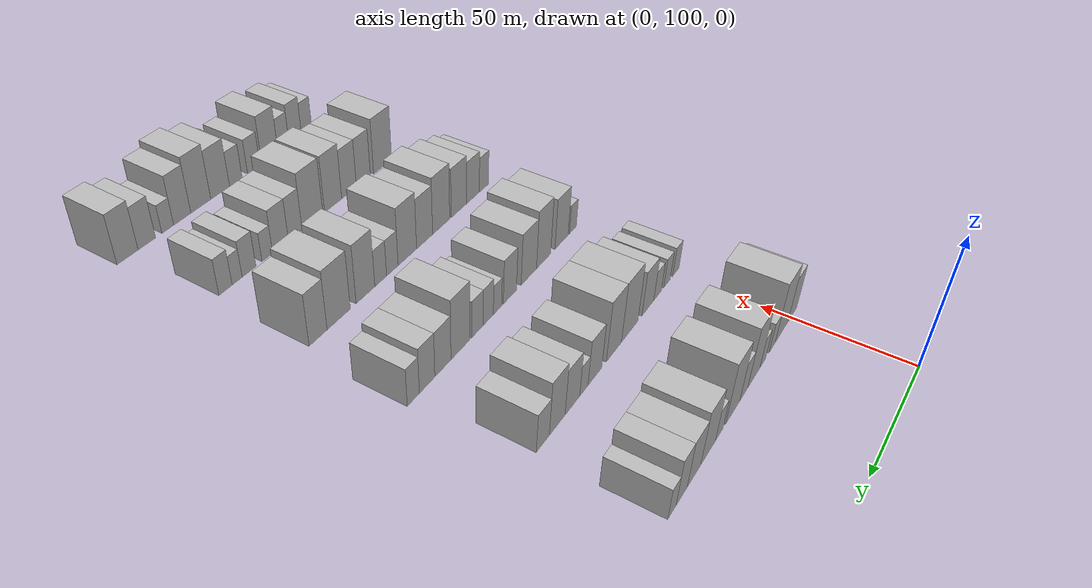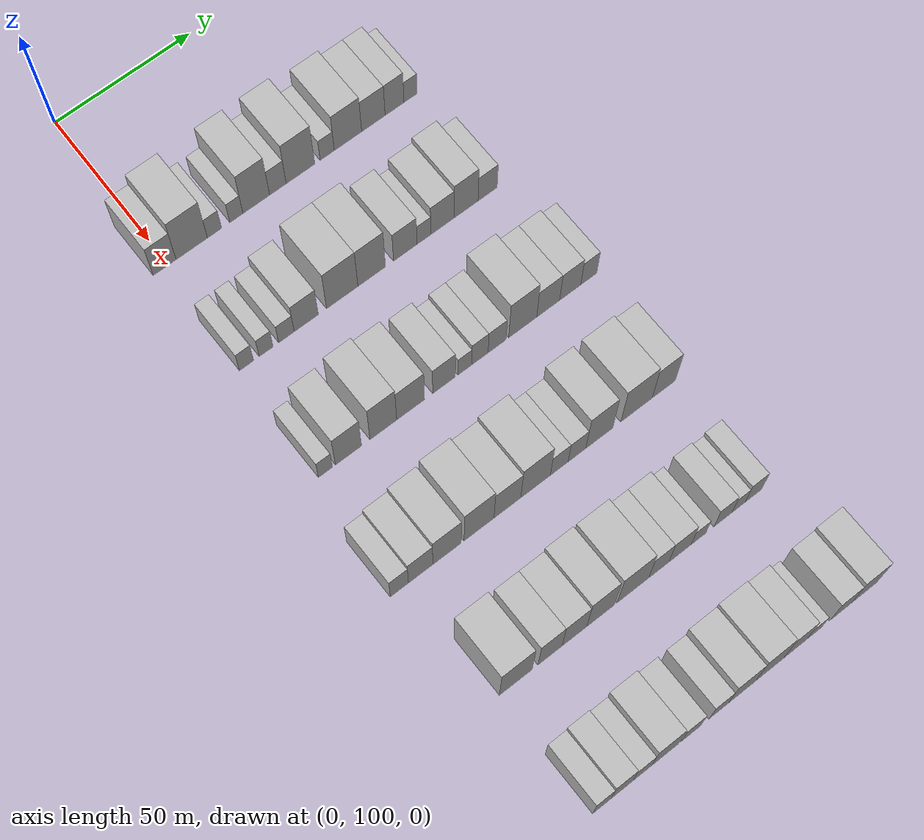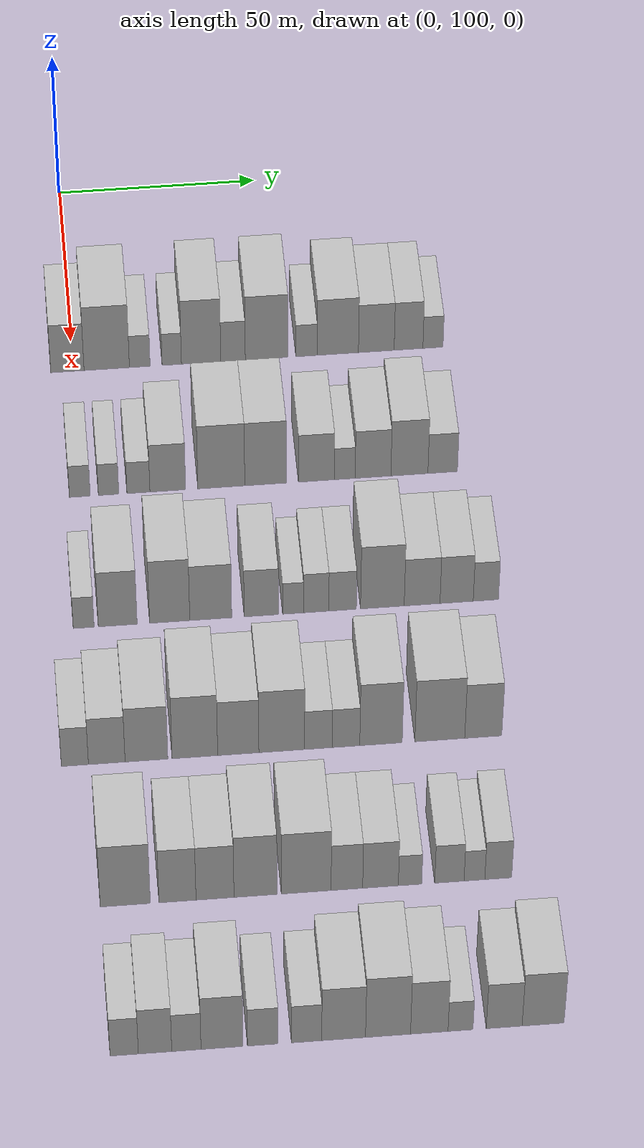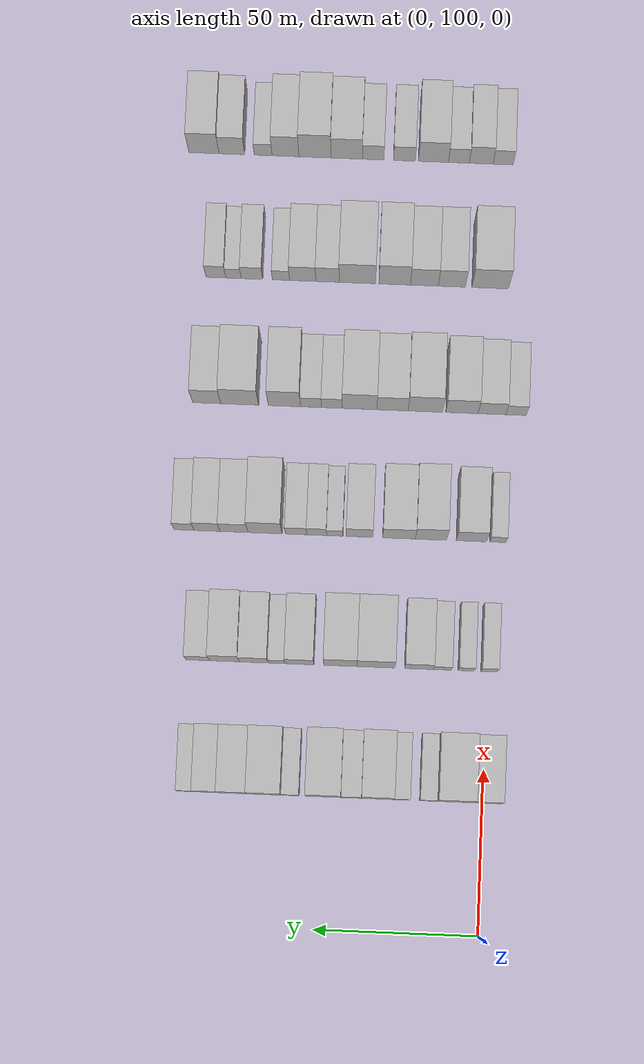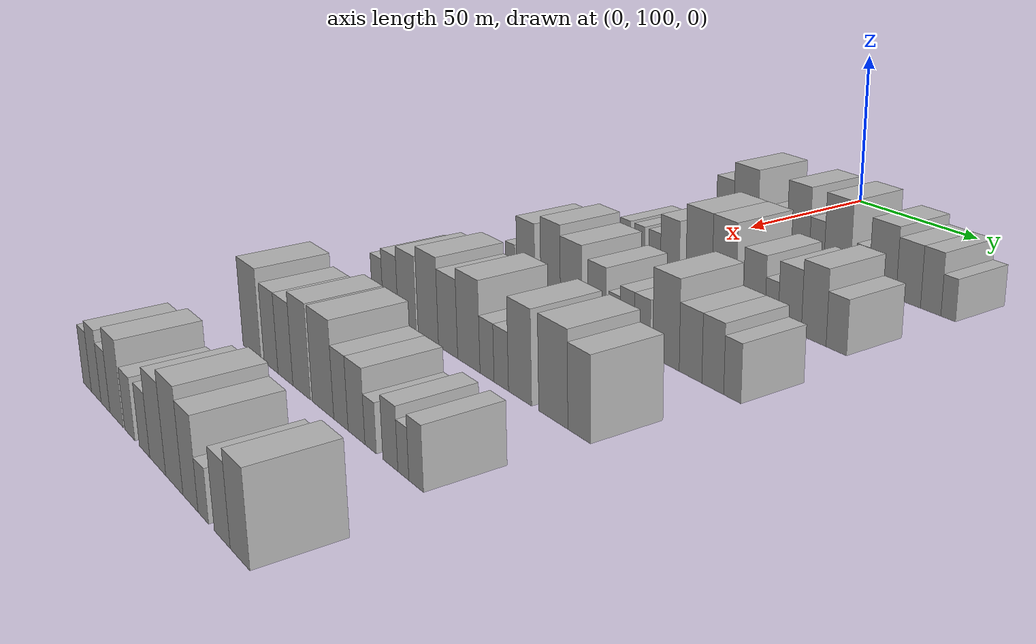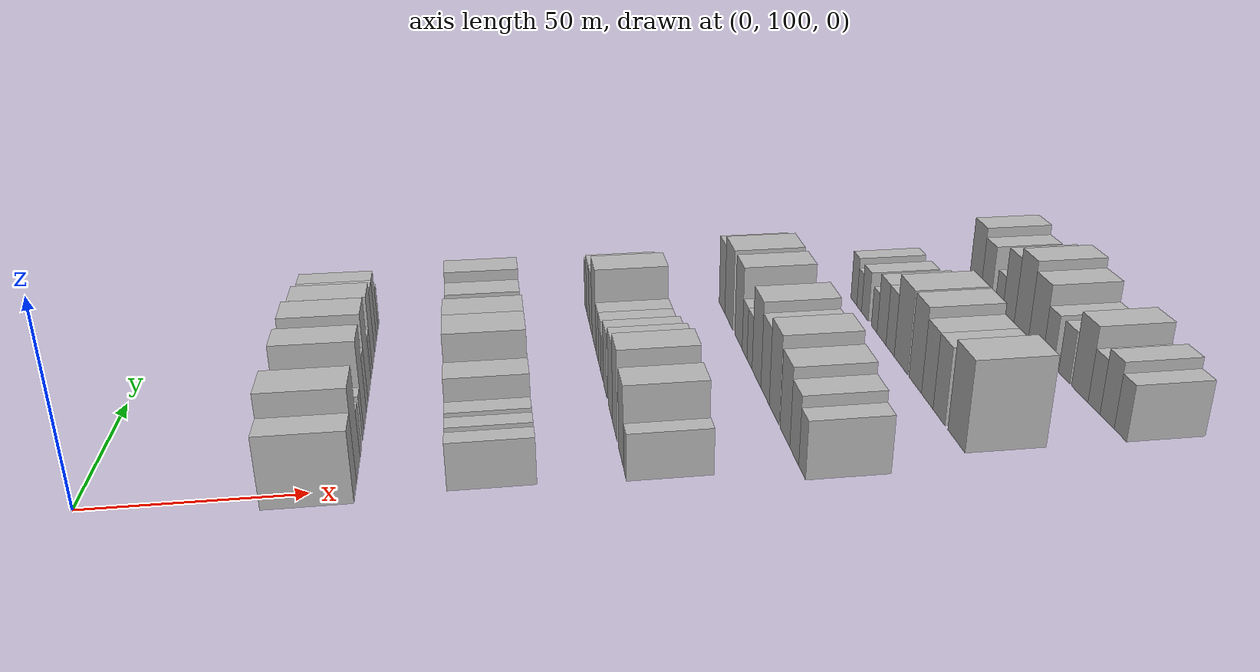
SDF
<sdf version="1.6">
 <world name="default">
  <model name="building_76">
   <static>1</static>
   <pose>50.0000 98.5672 0 0.000000 0.000000 0.000000</pose>
   <link name="link">
    <pose>0 0 9.00 0 0 0</pose>
    <collision name="collision"><geometry><box><size>20.0000 8.3102 18.0000</size></box></geometry></collision>
    <visual name="visual">
     <cast_shadows>0</cast_shadows>
     <geometry><box><size>20.0000 8.3102 18.0000</size></box></geometry>
     <material>
      <script>
       <uri>model://HANNAS_wall/materials/scripts</uri>
       <uri>model://HANNAS_wall/materials/textures</uri>
       <name>vrc/HANNAS_wall</name>
      </script>
     </material>
    </visual>
   </link>
  </model>
  <model name="building_77">
   <static>1</static>
   <pose>50.0000 108.3901 0 0.000000 0.000000 0.000000</pose>
   <link name="link">
    <pose>0 0 12.00 0 0 0</pose>
    <collision name="collision"><geometry><box><size>20.0000 11.3357 24.0000</size></box></geometry></collision>
    <visual name="visual">
     <cast_shadows>0</cast_shadows>
     <geometry><box><size>20.0000 11.3357 24.0000</size></box></geometry>
     <material>
      <script>
       <uri>model://HANNAS_wall/materials/scripts</uri>
       <uri>model://HANNAS_wall/materials/textures</uri>
       <name>vrc/HANNAS_wall</name>
      </script>
     </material>
    </visual>
   </link>
  </model>
  <model name="building_78">
   <static>1</static>
   <pose>50.0000 116.6455 0 0.000000 0.000000 0.000000</pose>
   <link name="link">
    <pose>0 0 6.00 0 0 0</pose>
    <collision name="collision"><geometry><box><size>20.0000 5.1752 12.0000</size></box></geometry></collision>
    <visual name="visual">
     <cast_shadows>0</cast_shadows>
     <geometry><box><size>20.0000 5.1752 12.0000</size></box></geometry>
     <material>
      <script>
       <uri>model://HANNAS_wall/materials/scripts</uri>
       <uri>model://HANNAS_wall/materials/textures</uri>
       <name>vrc/HANNAS_wall</name>
      </script>
     </material>
    </visual>
   </link>
  </model>
  <model name="building_79">
   <static>1</static>
   <pose>50.0000 124.6533 0 0.000000 0.000000 0.000000</pose>
   <link name="link">
    <pose>0 0 6.00 0 0 0</pose>
    <collision name="collision"><geometry><box><size>20.0000 4.8404 12.0000</size></box></geometry></collision>
    <visual name="visual">
     <cast_shadows>0</cast_shadows>
     <geometry><box><size>20.0000 4.8404 12.0000</size></box></geometry>
     <material>
      <script>
       <uri>model://HANNAS_wall/materials/scripts</uri>
       <uri>model://HANNAS_wall/materials/textures</uri>
       <name>vrc/HANNAS_wall</name>
      </script>
     </material>
    </visual>
   </link>
  </model>
  <model name="building_80">
   <static>1</static>
   <pose>50.0000 131.9939 0 0.000000 0.000000 0.000000</pose>
   <link name="link">
    <pose>0 0 12.00 0 0 0</pose>
    <collision name="collision"><geometry><box><size>20.0000 9.8407 24.0000</size></box></geometry></collision>
    <visual name="visual">
     <cast_shadows>0</cast_shadows>
     <geometry><box><size>20.0000 9.8407 24.0000</size></box></geometry>
     <material>
      <script>
       <uri>model://HANNAS_wall/materials/scripts</uri>
       <uri>model://HANNAS_wall/materials/textures</uri>
       <name>vrc/HANNAS_wall</name>
      </script>
     </material>
    </visual>
   </link>
  </model>
  <model name="building_81">
   <static>1</static>
   <pose>50.0000 139.9868 0 0.000000 0.000000 0.000000</pose>
   <link name="link">
    <pose>0 0 7.50 0 0 0</pose>
    <collision name="collision"><geometry><box><size>20.0000 6.1452 15.0000</size></box></geometry></collision>
    <visual name="visual">
     <cast_shadows>0</cast_shadows>
     <geometry><box><size>20.0000 6.1452 15.0000</size></box></geometry>
     <material>
      <script>
       <uri>model://HANNAS_wall/materials/scripts</uri>
       <uri>model://HANNAS_wall/materials/textures</uri>
       <name>vrc/HANNAS_wall</name>
      </script>
     </material>
    </visual>
   </link>
  </model>
  <model name="building_82">
   <static>1</static>
   <pose>50.0000 148.3992 0 0.000000 0.000000 0.000000</pose>
   <link name="link">
    <pose>0 0 12.00 0 0 0</pose>
    <collision name="collision"><geometry><box><size>20.0000 10.6796 24.0000</size></box></geometry></collision>
    <visual name="visual">
     <cast_shadows>0</cast_shadows>
     <geometry><box><size>20.0000 10.6796 24.0000</size></box></geometry>
     <material>
      <script>
       <uri>model://HANNAS_wall/materials/scripts</uri>
       <uri>model://HANNAS_wall/materials/textures</uri>
       <name>vrc/HANNAS_wall</name>
      </script>
     </material>
    </visual>
   </link>
  </model>
  <model name="building_83">
   <static>1</static>
   <pose>50.0000 158.4150 0 0.000000 0.000000 0.000000</pose>
   <link name="link">
    <pose>0 0 6.00 0 0 0</pose>
    <collision name="collision"><geometry><box><size>20.0000 5.3520 12.0000</size></box></geometry></collision>
    <visual name="visual">
     <cast_shadows>0</cast_shadows>
     <geometry><box><size>20.0000 5.3520 12.0000</size></box></geometry>
     <material>
      <script>
       <uri>model://HANNAS_wall/materials/scripts</uri>
       <uri>model://HANNAS_wall/materials/textures</uri>
       <name>vrc/HANNAS_wall</name>
      </script>
     </material>
    </visual>
   </link>
  </model>
  <model name="building_84">
   <static>1</static>
   <pose>50.0000 166.2675 0 0.000000 0.000000 0.000000</pose>
   <link name="link">
    <pose>0 0 10.50 0 0 0</pose>
    <collision name="collision"><geometry><box><size>20.0000 10.3529 21.0000</size></box></geometry></collision>
    <visual name="visual">
     <cast_shadows>0</cast_shadows>
     <geometry><box><size>20.0000 10.3529 21.0000</size></box></geometry>
     <material>
      <script>
       <uri>model://HANNAS_wall/materials/scripts</uri>
       <uri>model://HANNAS_wall/materials/textures</uri>
       <name>vrc/HANNAS_wall</name>
      </script>
     </material>
    </visual>
   </link>
  </model>
  <model name="building_85">
   <static>1</static>
   <pose>50.0000 175.9292 0 0.000000 0.000000 0.000000</pose>
   <link name="link">
    <pose>0 0 9.00 0 0 0</pose>
    <collision name="collision"><geometry><box><size>20.0000 8.9707 18.0000</size></box></geometry></collision>
    <visual name="visual">
     <cast_shadows>0</cast_shadows>
     <geometry><box><size>20.0000 8.9707 18.0000</size></box></geometry>
     <material>
      <script>
       <uri>model://HANNAS_wall/materials/scripts</uri>
       <uri>model://HANNAS_wall/materials/textures</uri>
       <name>vrc/HANNAS_wall</name>
      </script>
     </material>
    </visual>
   </link>
  </model>
  <model name="building_86">
   <static>1</static>
   <pose>50.0000 184.0339 0 0.000000 0.000000 0.000000</pose>
   <link name="link">
    <pose>0 0 9.00 0 0 0</pose>
    <collision name="collision"><geometry><box><size>20.0000 7.2386 18.0000</size></box></geometry></collision>
    <visual name="visual">
     <cast_shadows>0</cast_shadows>
     <geometry><box><size>20.0000 7.2386 18.0000</size></box></geometry>
     <material>
      <script>
       <uri>model://HANNAS_wall/materials/scripts</uri>
       <uri>model://HANNAS_wall/materials/textures</uri>
       <name>vrc/HANNAS_wall</name>
      </script>
     </material>
    </visual>
   </link>
  </model>
  <model name="building_87">
   <static>1</static>
   <pose>50.0000 190.1788 0 0.000000 0.000000 0.000000</pose>
   <link name="link">
    <pose>0 0 6.00 0 0 0</pose>
    <collision name="collision"><geometry><box><size>20.0000 5.0511 12.0000</size></box></geometry></collision>
    <visual name="visual">
     <cast_shadows>0</cast_shadows>
     <geometry><box><size>20.0000 5.0511 12.0000</size></box></geometry>
     <material>
      <script>
       <uri>model://HANNAS_wall/materials/scripts</uri>
       <uri>model://HANNAS_wall/materials/textures</uri>
       <name>vrc/HANNAS_wall</name>
      </script>
     </material>
    </visual>
   </link>
  </model>
  <model name="building_224">
   <static>1</static>
   <pose>90.0000 99.3424 0 0.000000 0.000000 0.000000</pose>
   <link name="link">
    <pose>0 0 6.00 0 0 0</pose>
    <collision name="collision"><geometry><box><size>20.0000 5.0800 12.0000</size></box></geometry></collision>
    <visual name="visual">
     <cast_shadows>0</cast_shadows>
     <geometry><box><size>20.0000 5.0800 12.0000</size></box></geometry>
     <material>
      <script>
       <uri>model://HANNAS_wall/materials/scripts</uri>
       <uri>model://HANNAS_wall/materials/textures</uri>
       <name>vrc/HANNAS_wall</name>
      </script>
     </material>
    </visual>
   </link>
  </model>
  <model name="building_225">
   <static>1</static>
   <pose>90.0000 106.3802 0 0.000000 0.000000 0.000000</pose>
   <link name="link">
    <pose>0 0 6.00 0 0 0</pose>
    <collision name="collision"><geometry><box><size>20.0000 4.9957 12.0000</size></box></geometry></collision>
    <visual name="visual">
     <cast_shadows>0</cast_shadows>
     <geometry><box><size>20.0000 4.9957 12.0000</size></box></geometry>
     <material>
      <script>
       <uri>model://HANNAS_wall/materials/scripts</uri>
       <uri>model://HANNAS_wall/materials/textures</uri>
       <name>vrc/HANNAS_wall</name>
      </script>
     </material>
    </visual>
   </link>
  </model>
  <model name="building_226">
   <static>1</static>
   <pose>90.0000 113.6863 0 0.000000 0.000000 0.000000</pose>
   <link name="link">
    <pose>0 0 6.00 0 0 0</pose>
    <collision name="collision"><geometry><box><size>20.0000 5.6165 12.0000</size></box></geometry></collision>
    <visual name="visual">
     <cast_shadows>0</cast_shadows>
     <geometry><box><size>20.0000 5.6165 12.0000</size></box></geometry>
     <material>
      <script>
       <uri>model://HANNAS_wall/materials/scripts</uri>
       <uri>model://HANNAS_wall/materials/textures</uri>
       <name>vrc/HANNAS_wall</name>
      </script>
     </material>
    </visual>
   </link>
  </model>
  <model name="building_227">
   <static>1</static>
   <pose>90.0000 120.8696 0 0.000000 0.000000 0.000000</pose>
   <link name="link">
    <pose>0 0 9.00 0 0 0</pose>
    <collision name="collision"><geometry><box><size>20.0000 8.7502 18.0000</size></box></geometry></collision>
    <visual name="visual">
     <cast_shadows>0</cast_shadows>
     <geometry><box><size>20.0000 8.7502 18.0000</size></box></geometry>
     <material>
      <script>
       <uri>model://HANNAS_wall/materials/scripts</uri>
       <uri>model://HANNAS_wall/materials/textures</uri>
       <name>vrc/HANNAS_wall</name>
      </script>
     </material>
    </visual>
   </link>
  </model>
  <model name="building_228">
   <static>1</static>
   <pose>90.0000 133.9975 0 0.000000 0.000000 0.000000</pose>
   <link name="link">
    <pose>0 0 12.00 0 0 0</pose>
    <collision name="collision"><geometry><box><size>20.0000 11.5055 24.0000</size></box></geometry></collision>
    <visual name="visual">
     <cast_shadows>0</cast_shadows>
     <geometry><box><size>20.0000 11.5055 24.0000</size></box></geometry>
     <material>
      <script>
       <uri>model://HANNAS_wall/materials/scripts</uri>
       <uri>model://HANNAS_wall/materials/textures</uri>
       <name>vrc/HANNAS_wall</name>
      </script>
     </material>
    </visual>
   </link>
  </model>
  <model name="building_229">
   <static>1</static>
   <pose>90.0000 144.8371 0 0.000000 0.000000 0.000000</pose>
   <link name="link">
    <pose>0 0 12.00 0 0 0</pose>
    <collision name="collision"><geometry><box><size>20.0000 10.1737 24.0000</size></box></geometry></collision>
    <visual name="visual">
     <cast_shadows>0</cast_shadows>
     <geometry><box><size>20.0000 10.1737 24.0000</size></box></geometry>
     <material>
      <script>
       <uri>model://HANNAS_wall/materials/scripts</uri>
       <uri>model://HANNAS_wall/materials/textures</uri>
       <name>vrc/HANNAS_wall</name>
      </script>
     </material>
    </visual>
   </link>
  </model>
  <model name="building_230">
   <static>1</static>
   <pose>90.0000 157.3308 0 0.000000 0.000000 0.000000</pose>
   <link name="link">
    <pose>0 0 9.00 0 0 0</pose>
    <collision name="collision"><geometry><box><size>20.0000 8.8136 18.0000</size></box></geometry></collision>
    <visual name="visual">
     <cast_shadows>0</cast_shadows>
     <geometry><box><size>20.0000 8.8136 18.0000</size></box></geometry>
     <material>
      <script>
       <uri>model://HANNAS_wall/materials/scripts</uri>
       <uri>model://HANNAS_wall/materials/textures</uri>
       <name>vrc/HANNAS_wall</name>
      </script>
     </material>
    </visual>
   </link>
  </model>
  <model name="building_231">
   <static>1</static>
   <pose>90.0000 164.3049 0 0.000000 0.000000 0.000000</pose>
   <link name="link">
    <pose>0 0 6.00 0 0 0</pose>
    <collision name="collision"><geometry><box><size>20.0000 5.1347 12.0000</size></box></geometry></collision>
    <visual name="visual">
     <cast_shadows>0</cast_shadows>
     <geometry><box><size>20.0000 5.1347 12.0000</size></box></geometry>
     <material>
      <script>
       <uri>model://HANNAS_wall/materials/scripts</uri>
       <uri>model://HANNAS_wall/materials/textures</uri>
       <name>vrc/HANNAS_wall</name>
      </script>
     </material>
    </visual>
   </link>
  </model>
  <model name="building_232">
   <static>1</static>
   <pose>90.0000 171.2639 0 0.000000 0.000000 0.000000</pose>
   <link name="link">
    <pose>0 0 9.00 0 0 0</pose>
    <collision name="collision"><geometry><box><size>20.0000 8.7832 18.0000</size></box></geometry></collision>
    <visual name="visual">
     <cast_shadows>0</cast_shadows>
     <geometry><box><size>20.0000 8.7832 18.0000</size></box></geometry>
     <material>
      <script>
       <uri>model://HANNAS_wall/materials/scripts</uri>
       <uri>model://HANNAS_wall/materials/textures</uri>
       <name>vrc/HANNAS_wall</name>
      </script>
     </material>
    </visual>
   </link>
  </model>
  <model name="building_233">
   <static>1</static>
   <pose>90.0000 180.2195 0 0.000000 0.000000 0.000000</pose>
   <link name="link">
    <pose>0 0 10.50 0 0 0</pose>
    <collision name="collision"><geometry><box><size>20.0000 9.1281 21.0000</size></box></geometry></collision>
    <visual name="visual">
     <cast_shadows>0</cast_shadows>
     <geometry><box><size>20.0000 9.1281 21.0000</size></box></geometry>
     <material>
      <script>
       <uri>model://HANNAS_wall/materials/scripts</uri>
       <uri>model://HANNAS_wall/materials/textures</uri>
       <name>vrc/HANNAS_wall</name>
      </script>
     </material>
    </visual>
   </link>
  </model>
  <model name="building_234">
   <static>1</static>
   <pose>90.0000 188.4133 0 0.000000 0.000000 0.000000</pose>
   <link name="link">
    <pose>0 0 7.50 0 0 0</pose>
    <collision name="collision"><geometry><box><size>20.0000 7.2596 15.0000</size></box></geometry></collision>
    <visual name="visual">
     <cast_shadows>0</cast_shadows>
     <geometry><box><size>20.0000 7.2596 15.0000</size></box></geometry>
     <material>
      <script>
       <uri>model://HANNAS_wall/materials/scripts</uri>
       <uri>model://HANNAS_wall/materials/textures</uri>
       <name>vrc/HANNAS_wall</name>
      </script>
     </material>
    </visual>
   </link>
  </model>
  <model name="building_361">
   <static>1</static>
   <pose>130.0000 97.9406 0 0.000000 0.000000 0.000000</pose>
   <link name="link">
    <pose>0 0 6.00 0 0 0</pose>
    <collision name="collision"><geometry><box><size>20.0000 5.0009 12.0000</size></box></geometry></collision>
    <visual name="visual">
     <cast_shadows>0</cast_shadows>
     <geometry><box><size>20.0000 5.0009 12.0000</size></box></geometry>
     <material>
      <script>
       <uri>model://HANNAS_wall/materials/scripts</uri>
       <uri>model://HANNAS_wall/materials/textures</uri>
       <name>vrc/HANNAS_wall</name>
      </script>
     </material>
    </visual>
   </link>
  </model>
  <model name="building_362">
   <static>1</static>
   <pose>130.0000 106.0952 0 0.000000 0.000000 0.000000</pose>
   <link name="link">
    <pose>0 0 10.50 0 0 0</pose>
    <collision name="collision"><geometry><box><size>20.0000 9.3083 21.0000</size></box></geometry></collision>
    <visual name="visual">
     <cast_shadows>0</cast_shadows>
     <geometry><box><size>20.0000 9.3083 21.0000</size></box></geometry>
     <material>
      <script>
       <uri>model://HANNAS_wall/materials/scripts</uri>
       <uri>model://HANNAS_wall/materials/textures</uri>
       <name>vrc/HANNAS_wall</name>
      </script>
     </material>
    </visual>
   </link>
  </model>
  <model name="building_363">
   <static>1</static>
   <pose>130.0000 118.5629 0 0.000000 0.000000 0.000000</pose>
   <link name="link">
    <pose>0 0 12.00 0 0 0</pose>
    <collision name="collision"><geometry><box><size>20.0000 9.6271 24.0000</size></box></geometry></collision>
    <visual name="visual">
     <cast_shadows>0</cast_shadows>
     <geometry><box><size>20.0000 9.6271 24.0000</size></box></geometry>
     <material>
      <script>
       <uri>model://HANNAS_wall/materials/scripts</uri>
       <uri>model://HANNAS_wall/materials/textures</uri>
       <name>vrc/HANNAS_wall</name>
      </script>
     </material>
    </visual>
   </link>
  </model>
  <model name="building_364">
   <static>1</static>
   <pose>130.0000 128.4090 0 0.000000 0.000000 0.000000</pose>
   <link name="link">
    <pose>0 0 10.50 0 0 0</pose>
    <collision name="collision"><geometry><box><size>20.0000 10.0651 21.0000</size></box></geometry></collision>
    <visual name="visual">
     <cast_shadows>0</cast_shadows>
     <geometry><box><size>20.0000 10.0651 21.0000</size></box></geometry>
     <material>
      <script>
       <uri>model://HANNAS_wall/materials/scripts</uri>
       <uri>model://HANNAS_wall/materials/textures</uri>
       <name>vrc/HANNAS_wall</name>
      </script>
     </material>
    </visual>
   </link>
  </model>
  <model name="building_365">
   <static>1</static>
   <pose>130.0000 140.5589 0 0.000000 0.000000 0.000000</pose>
   <link name="link">
    <pose>0 0 9.00 0 0 0</pose>
    <collision name="collision"><geometry><box><size>20.0000 8.2346 18.0000</size></box></geometry></collision>
    <visual name="visual">
     <cast_shadows>0</cast_shadows>
     <geometry><box><size>20.0000 8.2346 18.0000</size></box></geometry>
     <material>
      <script>
       <uri>model://HANNAS_wall/materials/scripts</uri>
       <uri>model://HANNAS_wall/materials/textures</uri>
       <name>vrc/HANNAS_wall</name>
      </script>
     </material>
    </visual>
   </link>
  </model>
  <model name="building_366">
   <static>1</static>
   <pose>130.0000 148.1855 0 0.000000 0.000000 0.000000</pose>
   <link name="link">
    <pose>0 0 6.00 0 0 0</pose>
    <collision name="collision"><geometry><box><size>20.0000 5.0186 12.0000</size></box></geometry></collision>
    <visual name="visual">
     <cast_shadows>0</cast_shadows>
     <geometry><box><size>20.0000 5.0186 12.0000</size></box></geometry>
     <material>
      <script>
       <uri>model://HANNAS_wall/materials/scripts</uri>
       <uri>model://HANNAS_wall/materials/textures</uri>
       <name>vrc/HANNAS_wall</name>
      </script>
     </material>
    </visual>
   </link>
  </model>
  <model name="building_367">
   <static>1</static>
   <pose>130.0000 153.7357 0 0.000000 0.000000 0.000000</pose>
   <link name="link">
    <pose>0 0 7.50 0 0 0</pose>
    <collision name="collision"><geometry><box><size>20.0000 6.0817 15.0000</size></box></geometry></collision>
    <visual name="visual">
     <cast_shadows>0</cast_shadows>
     <geometry><box><size>20.0000 6.0817 15.0000</size></box></geometry>
     <material>
      <script>
       <uri>model://HANNAS_wall/materials/scripts</uri>
       <uri>model://HANNAS_wall/materials/textures</uri>
       <name>vrc/HANNAS_wall</name>
      </script>
     </material>
    </visual>
   </link>
  </model>
  <model name="building_368">
   <static>1</static>
   <pose>130.0000 160.0951 0 0.000000 0.000000 0.000000</pose>
   <link name="link">
    <pose>0 0 7.50 0 0 0</pose>
    <collision name="collision"><geometry><box><size>20.0000 6.6373 15.0000</size></box></geometry></collision>
    <visual name="visual">
     <cast_shadows>0</cast_shadows>
     <geometry><box><size>20.0000 6.6373 15.0000</size></box></geometry>
     <material>
      <script>
       <uri>model://HANNAS_wall/materials/scripts</uri>
       <uri>model://HANNAS_wall/materials/textures</uri>
       <name>vrc/HANNAS_wall</name>
      </script>
     </material>
    </visual>
   </link>
  </model>
  <model name="building_369">
   <static>1</static>
   <pose>130.0000 169.6739 0 0.000000 0.000000 0.000000</pose>
   <link name="link">
    <pose>0 0 12.00 0 0 0</pose>
    <collision name="collision"><geometry><box><size>20.0000 10.5203 24.0000</size></box></geometry></collision>
    <visual name="visual">
     <cast_shadows>0</cast_shadows>
     <geometry><box><size>20.0000 10.5203 24.0000</size></box></geometry>
     <material>
      <script>
       <uri>model://HANNAS_wall/materials/scripts</uri>
       <uri>model://HANNAS_wall/materials/textures</uri>
       <name>vrc/HANNAS_wall</name>
      </script>
     </material>
    </visual>
   </link>
  </model>
  <model name="building_370">
   <static>1</static>
   <pose>130.0000 179.2480 0 0.000000 0.000000 0.000000</pose>
   <link name="link">
    <pose>0 0 9.00 0 0 0</pose>
    <collision name="collision"><geometry><box><size>20.0000 8.6278 18.0000</size></box></geometry></collision>
    <visual name="visual">
     <cast_shadows>0</cast_shadows>
     <geometry><box><size>20.0000 8.6278 18.0000</size></box></geometry>
     <material>
      <script>
       <uri>model://HANNAS_wall/materials/scripts</uri>
       <uri>model://HANNAS_wall/materials/textures</uri>
       <name>vrc/HANNAS_wall</name>
      </script>
     </material>
    </visual>
   </link>
  </model>
  <model name="building_371">
   <static>1</static>
   <pose>130.0000 187.5739 0 0.000000 0.000000 0.000000</pose>
   <link name="link">
    <pose>0 0 9.00 0 0 0</pose>
    <collision name="collision"><geometry><box><size>20.0000 8.0240 18.0000</size></box></geometry></collision>
    <visual name="visual">
     <cast_shadows>0</cast_shadows>
     <geometry><box><size>20.0000 8.0240 18.0000</size></box></geometry>
     <material>
      <script>
       <uri>model://HANNAS_wall/materials/scripts</uri>
       <uri>model://HANNAS_wall/materials/textures</uri>
       <name>vrc/HANNAS_wall</name>
      </script>
     </material>
    </visual>
   </link>
  </model>
  <model name="building_372">
   <static>1</static>
   <pose>130.0000 194.6305 0 0.000000 0.000000 0.000000</pose>
   <link name="link">
    <pose>0 0 7.50 0 0 0</pose>
    <collision name="collision"><geometry><box><size>20.0000 6.0894 15.0000</size></box></geometry></collision>
    <visual name="visual">
     <cast_shadows>0</cast_shadows>
     <geometry><box><size>20.0000 6.0894 15.0000</size></box></geometry>
     <material>
      <script>
       <uri>model://HANNAS_wall/materials/scripts</uri>
       <uri>model://HANNAS_wall/materials/textures</uri>
       <name>vrc/HANNAS_wall</name>
      </script>
     </material>
    </visual>
   </link>
  </model>
  <model name="building_493">
   <static>1</static>
   <pose>170.0000 93.5435 0 0.000000 0.000000 0.000000</pose>
   <link name="link">
    <pose>0 0 7.50 0 0 0</pose>
    <collision name="collision"><geometry><box><size>20.0000 6.3350 15.0000</size></box></geometry></collision>
    <visual name="visual">
     <cast_shadows>0</cast_shadows>
     <geometry><box><size>20.0000 6.3350 15.0000</size></box></geometry>
     <material>
      <script>
       <uri>model://HANNAS_wall/materials/scripts</uri>
       <uri>model://HANNAS_wall/materials/textures</uri>
       <name>vrc/HANNAS_wall</name>
      </script>
     </material>
    </visual>
   </link>
  </model>
  <model name="building_494">
   <static>1</static>
   <pose>170.0000 101.0089 0 0.000000 0.000000 0.000000</pose>
   <link name="link">
    <pose>0 0 9.00 0 0 0</pose>
    <collision name="collision"><geometry><box><size>20.0000 8.5959 18.0000</size></box></geometry></collision>
    <visual name="visual">
     <cast_shadows>0</cast_shadows>
     <geometry><box><size>20.0000 8.5959 18.0000</size></box></geometry>
     <material>
      <script>
       <uri>model://HANNAS_wall/materials/scripts</uri>
       <uri>model://HANNAS_wall/materials/textures</uri>
       <name>vrc/HANNAS_wall</name>
      </script>
     </material>
    </visual>
   </link>
  </model>
  <model name="building_495">
   <static>1</static>
   <pose>170.0000 110.3169 0 0.000000 0.000000 0.000000</pose>
   <link name="link">
    <pose>0 0 10.50 0 0 0</pose>
    <collision name="collision"><geometry><box><size>20.0000 10.0200 21.0000</size></box></geometry></collision>
    <visual name="visual">
     <cast_shadows>0</cast_shadows>
     <geometry><box><size>20.0000 10.0200 21.0000</size></box></geometry>
     <material>
      <script>
       <uri>model://HANNAS_wall/materials/scripts</uri>
       <uri>model://HANNAS_wall/materials/textures</uri>
       <name>vrc/HANNAS_wall</name>
      </script>
     </material>
    </visual>
   </link>
  </model>
  <model name="building_496">
   <static>1</static>
   <pose>170.0000 121.6764 0 0.000000 0.000000 0.000000</pose>
   <link name="link">
    <pose>0 0 12.00 0 0 0</pose>
    <collision name="collision"><geometry><box><size>20.0000 10.6990 24.0000</size></box></geometry></collision>
    <visual name="visual">
     <cast_shadows>0</cast_shadows>
     <geometry><box><size>20.0000 10.6990 24.0000</size></box></geometry>
     <material>
      <script>
       <uri>model://HANNAS_wall/materials/scripts</uri>
       <uri>model://HANNAS_wall/materials/textures</uri>
       <name>vrc/HANNAS_wall</name>
      </script>
     </material>
    </visual>
   </link>
  </model>
  <model name="building_497">
   <static>1</static>
   <pose>170.0000 131.8695 0 0.000000 0.000000 0.000000</pose>
   <link name="link">
    <pose>0 0 10.50 0 0 0</pose>
    <collision name="collision"><geometry><box><size>20.0000 9.6872 21.0000</size></box></geometry></collision>
    <visual name="visual">
     <cast_shadows>0</cast_shadows>
     <geometry><box><size>20.0000 9.6872 21.0000</size></box></geometry>
     <material>
      <script>
       <uri>model://HANNAS_wall/materials/scripts</uri>
       <uri>model://HANNAS_wall/materials/textures</uri>
       <name>vrc/HANNAS_wall</name>
      </script>
     </material>
    </visual>
   </link>
  </model>
  <model name="building_498">
   <static>1</static>
   <pose>170.0000 142.0919 0 0.000000 0.000000 0.000000</pose>
   <link name="link">
    <pose>0 0 12.00 0 0 0</pose>
    <collision name="collision"><geometry><box><size>20.0000 10.7576 24.0000</size></box></geometry></collision>
    <visual name="visual">
     <cast_shadows>0</cast_shadows>
     <geometry><box><size>20.0000 10.7576 24.0000</size></box></geometry>
     <material>
      <script>
       <uri>model://HANNAS_wall/materials/scripts</uri>
       <uri>model://HANNAS_wall/materials/textures</uri>
       <name>vrc/HANNAS_wall</name>
      </script>
     </material>
    </visual>
   </link>
  </model>
  <model name="building_499">
   <static>1</static>
   <pose>170.0000 150.7215 0 0.000000 0.000000 0.000000</pose>
   <link name="link">
    <pose>0 0 7.50 0 0 0</pose>
    <collision name="collision"><geometry><box><size>20.0000 6.5016 15.0000</size></box></geometry></collision>
    <visual name="visual">
     <cast_shadows>0</cast_shadows>
     <geometry><box><size>20.0000 6.5016 15.0000</size></box></geometry>
     <material>
      <script>
       <uri>model://HANNAS_wall/materials/scripts</uri>
       <uri>model://HANNAS_wall/materials/textures</uri>
       <name>vrc/HANNAS_wall</name>
      </script>
     </material>
    </visual>
   </link>
  </model>
  <model name="building_500">
   <static>1</static>
   <pose>170.0000 157.2145 0 0.000000 0.000000 0.000000</pose>
   <link name="link">
    <pose>0 0 7.50 0 0 0</pose>
    <collision name="collision"><geometry><box><size>20.0000 6.4845 15.0000</size></box></geometry></collision>
    <visual name="visual">
     <cast_shadows>0</cast_shadows>
     <geometry><box><size>20.0000 6.4845 15.0000</size></box></geometry>
     <material>
      <script>
       <uri>model://HANNAS_wall/materials/scripts</uri>
       <uri>model://HANNAS_wall/materials/textures</uri>
       <name>vrc/HANNAS_wall</name>
      </script>
     </material>
    </visual>
   </link>
  </model>
  <model name="building_501">
   <static>1</static>
   <pose>170.0000 165.4576 0 0.000000 0.000000 0.000000</pose>
   <link name="link">
    <pose>0 0 12.00 0 0 0</pose>
    <collision name="collision"><geometry><box><size>20.0000 10.0018 24.0000</size></box></geometry></collision>
    <visual name="visual">
     <cast_shadows>0</cast_shadows>
     <geometry><box><size>20.0000 10.0018 24.0000</size></box></geometry>
     <material>
      <script>
       <uri>model://HANNAS_wall/materials/scripts</uri>
       <uri>model://HANNAS_wall/materials/textures</uri>
       <name>vrc/HANNAS_wall</name>
      </script>
     </material>
    </visual>
   </link>
  </model>
  <model name="building_502">
   <static>1</static>
   <pose>170.0000 179.3366 0 0.000000 0.000000 0.000000</pose>
   <link name="link">
    <pose>0 0 12.00 0 0 0</pose>
    <collision name="collision"><geometry><box><size>20.0000 11.7562 24.0000</size></box></geometry></collision>
    <visual name="visual">
     <cast_shadows>0</cast_shadows>
     <geometry><box><size>20.0000 11.7562 24.0000</size></box></geometry>
     <material>
      <script>
       <uri>model://HANNAS_wall/materials/scripts</uri>
       <uri>model://HANNAS_wall/materials/textures</uri>
       <name>vrc/HANNAS_wall</name>
      </script>
     </material>
    </visual>
   </link>
  </model>
  <model name="building_503">
   <static>1</static>
   <pose>170.0000 189.5894 0 0.000000 0.000000 0.000000</pose>
   <link name="link">
    <pose>0 0 10.50 0 0 0</pose>
    <collision name="collision"><geometry><box><size>20.0000 8.7493 21.0000</size></box></geometry></collision>
    <visual name="visual">
     <cast_shadows>0</cast_shadows>
     <geometry><box><size>20.0000 8.7493 21.0000</size></box></geometry>
     <material>
      <script>
       <uri>model://HANNAS_wall/materials/scripts</uri>
       <uri>model://HANNAS_wall/materials/textures</uri>
       <name>vrc/HANNAS_wall</name>
      </script>
     </material>
    </visual>
   </link>
  </model>
  <model name="building_630">
   <static>1</static>
   <pose>210.0000 102.7855 0 0.000000 0.000000 0.000000</pose>
   <link name="link">
    <pose>0 0 12.00 0 0 0</pose>
    <collision name="collision"><geometry><box><size>20.0000 11.4711 24.0000</size></box></geometry></collision>
    <visual name="visual">
     <cast_shadows>0</cast_shadows>
     <geometry><box><size>20.0000 11.4711 24.0000</size></box></geometry>
     <material>
      <script>
       <uri>model://HANNAS_wall/materials/scripts</uri>
       <uri>model://HANNAS_wall/materials/textures</uri>
       <name>vrc/HANNAS_wall</name>
      </script>
     </material>
    </visual>
   </link>
  </model>
  <model name="building_631">
   <static>1</static>
   <pose>210.0000 114.7701 0 0.000000 0.000000 0.000000</pose>
   <link name="link">
    <pose>0 0 10.50 0 0 0</pose>
    <collision name="collision"><geometry><box><size>20.0000 8.4981 21.0000</size></box></geometry></collision>
    <visual name="visual">
     <cast_shadows>0</cast_shadows>
     <geometry><box><size>20.0000 8.4981 21.0000</size></box></geometry>
     <material>
      <script>
       <uri>model://HANNAS_wall/materials/scripts</uri>
       <uri>model://HANNAS_wall/materials/textures</uri>
       <name>vrc/HANNAS_wall</name>
      </script>
     </material>
    </visual>
   </link>
  </model>
  <model name="building_632">
   <static>1</static>
   <pose>210.0000 123.3800 0 0.000000 0.000000 0.000000</pose>
   <link name="link">
    <pose>0 0 10.50 0 0 0</pose>
    <collision name="collision"><geometry><box><size>20.0000 8.7217 21.0000</size></box></geometry></collision>
    <visual name="visual">
     <cast_shadows>0</cast_shadows>
     <geometry><box><size>20.0000 8.7217 21.0000</size></box></geometry>
     <material>
      <script>
       <uri>model://HANNAS_wall/materials/scripts</uri>
       <uri>model://HANNAS_wall/materials/textures</uri>
       <name>vrc/HANNAS_wall</name>
      </script>
     </material>
    </visual>
   </link>
  </model>
  <model name="building_633">
   <static>1</static>
   <pose>210.0000 132.6840 0 0.000000 0.000000 0.000000</pose>
   <link name="link">
    <pose>0 0 12.00 0 0 0</pose>
    <collision name="collision"><geometry><box><size>20.0000 9.8864 24.0000</size></box></geometry></collision>
    <visual name="visual">
     <cast_shadows>0</cast_shadows>
     <geometry><box><size>20.0000 9.8864 24.0000</size></box></geometry>
     <material>
      <script>
       <uri>model://HANNAS_wall/materials/scripts</uri>
       <uri>model://HANNAS_wall/materials/textures</uri>
       <name>vrc/HANNAS_wall</name>
      </script>
     </material>
    </visual>
   </link>
  </model>
  <model name="building_634">
   <static>1</static>
   <pose>210.0000 144.3449 0 0.000000 0.000000 0.000000</pose>
   <link name="link">
    <pose>0 0 12.00 0 0 0</pose>
    <collision name="collision"><geometry><box><size>20.0000 11.4354 24.0000</size></box></geometry></collision>
    <visual name="visual">
     <cast_shadows>0</cast_shadows>
     <geometry><box><size>20.0000 11.4354 24.0000</size></box></geometry>
     <material>
      <script>
       <uri>model://HANNAS_wall/materials/scripts</uri>
       <uri>model://HANNAS_wall/materials/textures</uri>
       <name>vrc/HANNAS_wall</name>
      </script>
     </material>
    </visual>
   </link>
  </model>
  <model name="building_635">
   <static>1</static>
   <pose>210.0000 153.7070 0 0.000000 0.000000 0.000000</pose>
   <link name="link">
    <pose>0 0 9.00 0 0 0</pose>
    <collision name="collision"><geometry><box><size>20.0000 7.2889 18.0000</size></box></geometry></collision>
    <visual name="visual">
     <cast_shadows>0</cast_shadows>
     <geometry><box><size>20.0000 7.2889 18.0000</size></box></geometry>
     <material>
      <script>
       <uri>model://HANNAS_wall/materials/scripts</uri>
       <uri>model://HANNAS_wall/materials/textures</uri>
       <name>vrc/HANNAS_wall</name>
      </script>
     </material>
    </visual>
   </link>
  </model>
  <model name="building_636">
   <static>1</static>
   <pose>210.0000 161.4639 0 0.000000 0.000000 0.000000</pose>
   <link name="link">
    <pose>0 0 9.00 0 0 0</pose>
    <collision name="collision"><geometry><box><size>20.0000 8.2248 18.0000</size></box></geometry></collision>
    <visual name="visual">
     <cast_shadows>0</cast_shadows>
     <geometry><box><size>20.0000 8.2248 18.0000</size></box></geometry>
     <material>
      <script>
       <uri>model://HANNAS_wall/materials/scripts</uri>
       <uri>model://HANNAS_wall/materials/textures</uri>
       <name>vrc/HANNAS_wall</name>
      </script>
     </material>
    </visual>
   </link>
  </model>
  <model name="building_637">
   <static>1</static>
   <pose>210.0000 168.2745 0 0.000000 0.000000 0.000000</pose>
   <link name="link">
    <pose>0 0 6.00 0 0 0</pose>
    <collision name="collision"><geometry><box><size>20.0000 5.3965 12.0000</size></box></geometry></collision>
    <visual name="visual">
     <cast_shadows>0</cast_shadows>
     <geometry><box><size>20.0000 5.3965 12.0000</size></box></geometry>
     <material>
      <script>
       <uri>model://HANNAS_wall/materials/scripts</uri>
       <uri>model://HANNAS_wall/materials/textures</uri>
       <name>vrc/HANNAS_wall</name>
      </script>
     </material>
    </visual>
   </link>
  </model>
  <model name="building_638">
   <static>1</static>
   <pose>210.0000 177.3578 0 0.000000 0.000000 0.000000</pose>
   <link name="link">
    <pose>0 0 7.50 0 0 0</pose>
    <collision name="collision"><geometry><box><size>20.0000 6.7701 15.0000</size></box></geometry></collision>
    <visual name="visual">
     <cast_shadows>0</cast_shadows>
     <geometry><box><size>20.0000 6.7701 15.0000</size></box></geometry>
     <material>
      <script>
       <uri>model://HANNAS_wall/materials/scripts</uri>
       <uri>model://HANNAS_wall/materials/textures</uri>
       <name>vrc/HANNAS_wall</name>
      </script>
     </material>
    </visual>
   </link>
  </model>
  <model name="building_639">
   <static>1</static>
   <pose>210.0000 183.1440 0 0.000000 0.000000 0.000000</pose>
   <link name="link">
    <pose>0 0 6.00 0 0 0</pose>
    <collision name="collision"><geometry><box><size>20.0000 4.8024 12.0000</size></box></geometry></collision>
    <visual name="visual">
     <cast_shadows>0</cast_shadows>
     <geometry><box><size>20.0000 4.8024 12.0000</size></box></geometry>
     <material>
      <script>
       <uri>model://HANNAS_wall/materials/scripts</uri>
       <uri>model://HANNAS_wall/materials/textures</uri>
       <name>vrc/HANNAS_wall</name>
      </script>
     </material>
    </visual>
   </link>
  </model>
  <model name="building_640">
   <static>1</static>
   <pose>210.0000 188.6440 0 0.000000 0.000000 0.000000</pose>
   <link name="link">
    <pose>0 0 7.50 0 0 0</pose>
    <collision name="collision"><geometry><box><size>20.0000 6.1974 15.0000</size></box></geometry></collision>
    <visual name="visual">
     <cast_shadows>0</cast_shadows>
     <geometry><box><size>20.0000 6.1974 15.0000</size></box></geometry>
     <material>
      <script>
       <uri>model://HANNAS_wall/materials/scripts</uri>
       <uri>model://HANNAS_wall/materials/textures</uri>
       <name>vrc/HANNAS_wall</name>
      </script>
     </material>
    </visual>
   </link>
  </model>
  <model name="building_766">
   <static>1</static>
   <pose>250.0000 99.9817 0 0.000000 0.000000 0.000000</pose>
   <link name="link">
    <pose>0 0 7.50 0 0 0</pose>
    <collision name="collision"><geometry><box><size>20.0000 6.3433 15.0000</size></box></geometry></collision>
    <visual name="visual">
     <cast_shadows>0</cast_shadows>
     <geometry><box><size>20.0000 6.3433 15.0000</size></box></geometry>
     <material>
      <script>
       <uri>model://HANNAS_wall/materials/scripts</uri>
       <uri>model://HANNAS_wall/materials/textures</uri>
       <name>vrc/HANNAS_wall</name>
      </script>
     </material>
    </visual>
   </link>
  </model>
  <model name="building_767">
   <static>1</static>
   <pose>250.0000 106.8997 0 0.000000 0.000000 0.000000</pose>
   <link name="link">
    <pose>0 0 9.00 0 0 0</pose>
    <collision name="collision"><geometry><box><size>20.0000 7.4929 18.0000</size></box></geometry></collision>
    <visual name="visual">
     <cast_shadows>0</cast_shadows>
     <geometry><box><size>20.0000 7.4929 18.0000</size></box></geometry>
     <material>
      <script>
       <uri>model://HANNAS_wall/materials/scripts</uri>
       <uri>model://HANNAS_wall/materials/textures</uri>
       <name>vrc/HANNAS_wall</name>
      </script>
     </material>
    </visual>
   </link>
  </model>
  <model name="building_768">
   <static>1</static>
   <pose>250.0000 113.9294 0 0.000000 0.000000 0.000000</pose>
   <link name="link">
    <pose>0 0 7.50 0 0 0</pose>
    <collision name="collision"><geometry><box><size>20.0000 6.5664 15.0000</size></box></geometry></collision>
    <visual name="visual">
     <cast_shadows>0</cast_shadows>
     <geometry><box><size>20.0000 6.5664 15.0000</size></box></geometry>
     <material>
      <script>
       <uri>model://HANNAS_wall/materials/scripts</uri>
       <uri>model://HANNAS_wall/materials/textures</uri>
       <name>vrc/HANNAS_wall</name>
      </script>
     </material>
    </visual>
   </link>
  </model>
  <model name="building_769">
   <static>1</static>
   <pose>250.0000 121.9298 0 0.000000 0.000000 0.000000</pose>
   <link name="link">
    <pose>0 0 10.50 0 0 0</pose>
    <collision name="collision"><geometry><box><size>20.0000 9.4344 21.0000</size></box></geometry></collision>
    <visual name="visual">
     <cast_shadows>0</cast_shadows>
     <geometry><box><size>20.0000 9.4344 21.0000</size></box></geometry>
     <material>
      <script>
       <uri>model://HANNAS_wall/materials/scripts</uri>
       <uri>model://HANNAS_wall/materials/textures</uri>
       <name>vrc/HANNAS_wall</name>
      </script>
     </material>
    </visual>
   </link>
  </model>
  <model name="building_770">
   <static>1</static>
   <pose>250.0000 131.0921 0 0.000000 0.000000 0.000000</pose>
   <link name="link">
    <pose>0 0 7.50 0 0 0</pose>
    <collision name="collision"><geometry><box><size>20.0000 6.8903 15.0000</size></box></geometry></collision>
    <visual name="visual">
     <cast_shadows>0</cast_shadows>
     <geometry><box><size>20.0000 6.8903 15.0000</size></box></geometry>
     <material>
      <script>
       <uri>model://HANNAS_wall/materials/scripts</uri>
       <uri>model://HANNAS_wall/materials/textures</uri>
       <name>vrc/HANNAS_wall</name>
      </script>
     </material>
    </visual>
   </link>
  </model>
  <model name="building_771">
   <static>1</static>
   <pose>250.0000 140.9396 0 0.000000 0.000000 0.000000</pose>
   <link name="link">
    <pose>0 0 7.50 0 0 0</pose>
    <collision name="collision"><geometry><box><size>20.0000 6.8047 15.0000</size></box></geometry></collision>
    <visual name="visual">
     <cast_shadows>0</cast_shadows>
     <geometry><box><size>20.0000 6.8047 15.0000</size></box></geometry>
     <material>
      <script>
       <uri>model://HANNAS_wall/materials/scripts</uri>
       <uri>model://HANNAS_wall/materials/textures</uri>
       <name>vrc/HANNAS_wall</name>
      </script>
     </material>
    </visual>
   </link>
  </model>
  <model name="building_772">
   <static>1</static>
   <pose>250.0000 149.2749 0 0.000000 0.000000 0.000000</pose>
   <link name="link">
    <pose>0 0 10.50 0 0 0</pose>
    <collision name="collision"><geometry><box><size>20.0000 9.8660 21.0000</size></box></geometry></collision>
    <visual name="visual">
     <cast_shadows>0</cast_shadows>
     <geometry><box><size>20.0000 9.8660 21.0000</size></box></geometry>
     <material>
      <script>
       <uri>model://HANNAS_wall/materials/scripts</uri>
       <uri>model://HANNAS_wall/materials/textures</uri>
       <name>vrc/HANNAS_wall</name>
      </script>
     </material>
    </visual>
   </link>
  </model>
  <model name="building_773">
   <static>1</static>
   <pose>250.0000 159.2798 0 0.000000 0.000000 0.000000</pose>
   <link name="link">
    <pose>0 0 12.00 0 0 0</pose>
    <collision name="collision"><geometry><box><size>20.0000 10.1438 24.0000</size></box></geometry></collision>
    <visual name="visual">
     <cast_shadows>0</cast_shadows>
     <geometry><box><size>20.0000 10.1438 24.0000</size></box></geometry>
     <material>
      <script>
       <uri>model://HANNAS_wall/materials/scripts</uri>
       <uri>model://HANNAS_wall/materials/textures</uri>
       <name>vrc/HANNAS_wall</name>
      </script>
     </material>
    </visual>
   </link>
  </model>
  <model name="building_774">
   <static>1</static>
   <pose>250.0000 168.5817 0 0.000000 0.000000 0.000000</pose>
   <link name="link">
    <pose>0 0 10.50 0 0 0</pose>
    <collision name="collision"><geometry><box><size>20.0000 8.4601 21.0000</size></box></geometry></collision>
    <visual name="visual">
     <cast_shadows>0</cast_shadows>
     <geometry><box><size>20.0000 8.4601 21.0000</size></box></geometry>
     <material>
      <script>
       <uri>model://HANNAS_wall/materials/scripts</uri>
       <uri>model://HANNAS_wall/materials/textures</uri>
       <name>vrc/HANNAS_wall</name>
      </script>
     </material>
    </visual>
   </link>
  </model>
  <model name="building_775">
   <static>1</static>
   <pose>250.0000 175.6311 0 0.000000 0.000000 0.000000</pose>
   <link name="link">
    <pose>0 0 6.00 0 0 0</pose>
    <collision name="collision"><geometry><box><size>20.0000 5.6386 12.0000</size></box></geometry></collision>
    <visual name="visual">
     <cast_shadows>0</cast_shadows>
     <geometry><box><size>20.0000 5.6386 12.0000</size></box></geometry>
     <material>
      <script>
       <uri>model://HANNAS_wall/materials/scripts</uri>
       <uri>model://HANNAS_wall/materials/textures</uri>
       <name>vrc/HANNAS_wall</name>
      </script>
     </material>
    </visual>
   </link>
  </model>
  <model name="building_776">
   <static>1</static>
   <pose>250.0000 185.4993 0 0.000000 0.000000 0.000000</pose>
   <link name="link">
    <pose>0 0 9.00 0 0 0</pose>
    <collision name="collision"><geometry><box><size>20.0000 8.0980 18.0000</size></box></geometry></collision>
    <visual name="visual">
     <cast_shadows>0</cast_shadows>
     <geometry><box><size>20.0000 8.0980 18.0000</size></box></geometry>
     <material>
      <script>
       <uri>model://HANNAS_wall/materials/scripts</uri>
       <uri>model://HANNAS_wall/materials/textures</uri>
       <name>vrc/HANNAS_wall</name>
      </script>
     </material>
    </visual>
   </link>
  </model>
  <model name="building_777">
   <static>1</static>
   <pose>250.0000 194.2922 0 0.000000 0.000000 0.000000</pose>
   <link name="link">
    <pose>0 0 10.50 0 0 0</pose>
    <collision name="collision"><geometry><box><size>20.0000 9.4877 21.0000</size></box></geometry></collision>
    <visual name="visual">
     <cast_shadows>0</cast_shadows>
     <geometry><box><size>20.0000 9.4877 21.0000</size></box></geometry>
     <material>
      <script>
       <uri>model://HANNAS_wall/materials/scripts</uri>
       <uri>model://HANNAS_wall/materials/textures</uri>
       <name>vrc/HANNAS_wall</name>
      </script>
     </material>
    </visual>
   </link>
  </model>
 </world>
</sdf>
